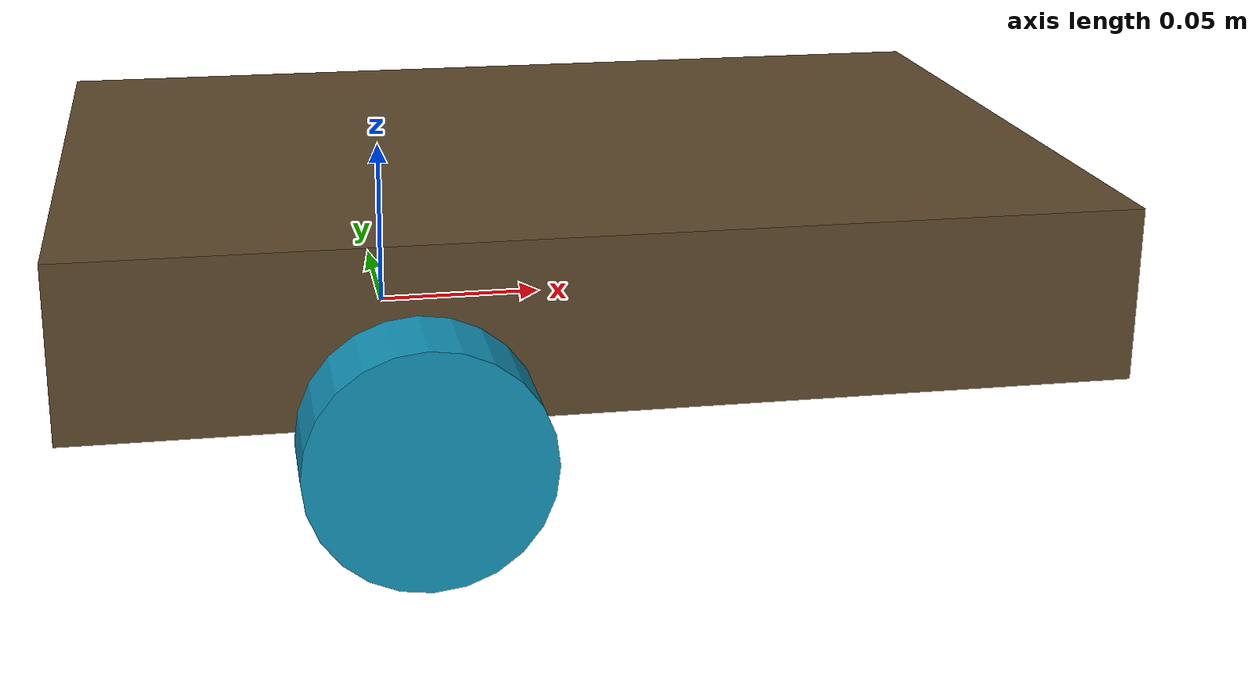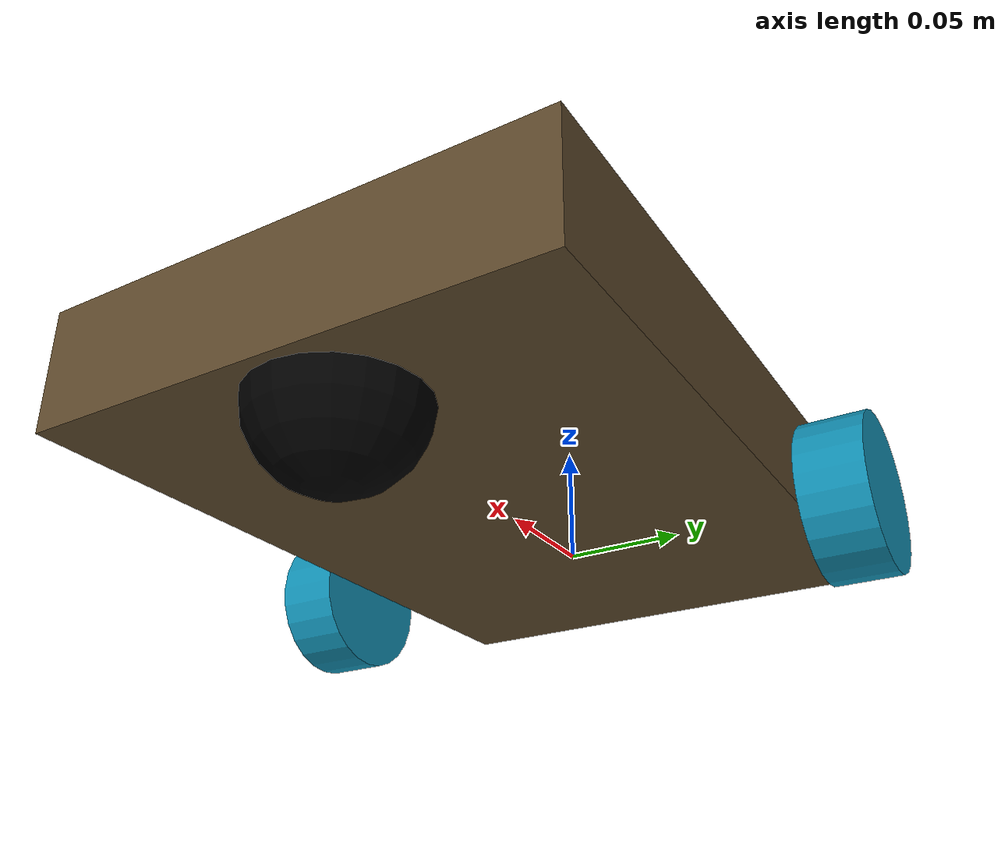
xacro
<?xml version="1.0"?>
<robot xmlns:xacro="http://www.ros.org/wiki/xacro"  name="komurin_2">

    <xacro:include filename="intertial_macros.xacro"/>

    <material name="mdf">
        <color rgba="0.36 0.282 0.168 1" />
    </material>

    <material name="wheel">
        <color rgba="0.071 0.57 0.71 1" />
    </material>

    <material name="mechanum">
        <color rgba="0.0 0.0 0.0 1" />
    </material>

    <link name="base_link">
    </link>

    <joint name="chassis_joint" type="fixed">
        <parent link="base_link" />
        <child link="chassis" />
        <origin xyz = "-0.095 0 0" />
    </joint>

    <link name="chassis">
        <visual>
            <origin xyz="0.1485 0 0.025" />
            <geometry>
                <box size="0.297 0.21 0.05" />
            </geometry>
            <material name="mdf" />
        </visual>
        <collision>
            <origin xyz="0.1485 0 0.025" />
            <geometry>
                <box size="0.297 0.21 0.05" />
            </geometry>
        </collision>
        <xacro:inertial_box mass="0.5" x="0.297" y="0.21" z="0.05">
            <origin xyz="0.1485 0 0.025" rpy="0 0 0"/>
        </xacro:inertial_box>
    </link>

    <joint name="left_wheel_joint" type="continuous">
        <parent link="base_link"/>
        <child link="left_wheel"/>
        <origin xyz="0 0.125 0" rpy="-${pi/2} 0 0"/>
        <axis xyz="0 0 1"/>
    </joint>

    <link name="left_wheel">
        <visual>
            <geometry>
                <cylinder radius="0.033" length="0.027" />
            </geometry>
            <material name="wheel"/>
        </visual>
        <collision>
            <geometry>
                <cylinder radius="0.033" length="0.027" />
            </geometry>
        </collision>
        <xacro:inertial_cylinder mass="0.1" length="0.04" radius="0.033">
            <origin xyz="0 0 0" rpy="0 0 0"/>
        </xacro:inertial_cylinder>
    </link>

    <joint name="right_wheel_joint" type="continuous">
        <parent link="base_link"/>
        <child link="right_wheel"/>
        <origin xyz="0 -0.125 0" rpy="${pi/2} 0 0"/>
        <axis xyz="0 0 -1"/>
    </joint>

    <link name="right_wheel">
        <visual>
            <geometry>
                <cylinder radius="0.033" length="0.027" />
            </geometry>
            <material name="wheel"/>
        </visual>
        <collision>
            <geometry>
                <cylinder radius="0.033" length="0.027" />
            </geometry>
        </collision>
        <xacro:inertial_cylinder mass="0.1" length="0.04" radius="0.033">
            <origin xyz="0 0 0" rpy="0 0 0"/>
        </xacro:inertial_cylinder>
    </link>

    <joint name="mechanum_wheel_joint" type="fixed">
        <parent link="chassis"/>
        <child link="mechanum_wheel"/>
        <origin xyz="0.26 0 0"/>
    </joint>

    <link name="mechanum_wheel">
        <visual>
            <geometry>
                <sphere radius="0.033"/>
            </geometry>
            <material name="mechanum"/>
        </visual>
        <collision>
            <geometry>
                <sphere radius="0.033"/>
            </geometry>
        </collision>
        <xacro:inertial_sphere mass="0.1" radius="0.033">
            <origin xyz="0 0 0" rpy="0 0 0"/>
        </xacro:inertial_sphere>
    </link>

</robot>
